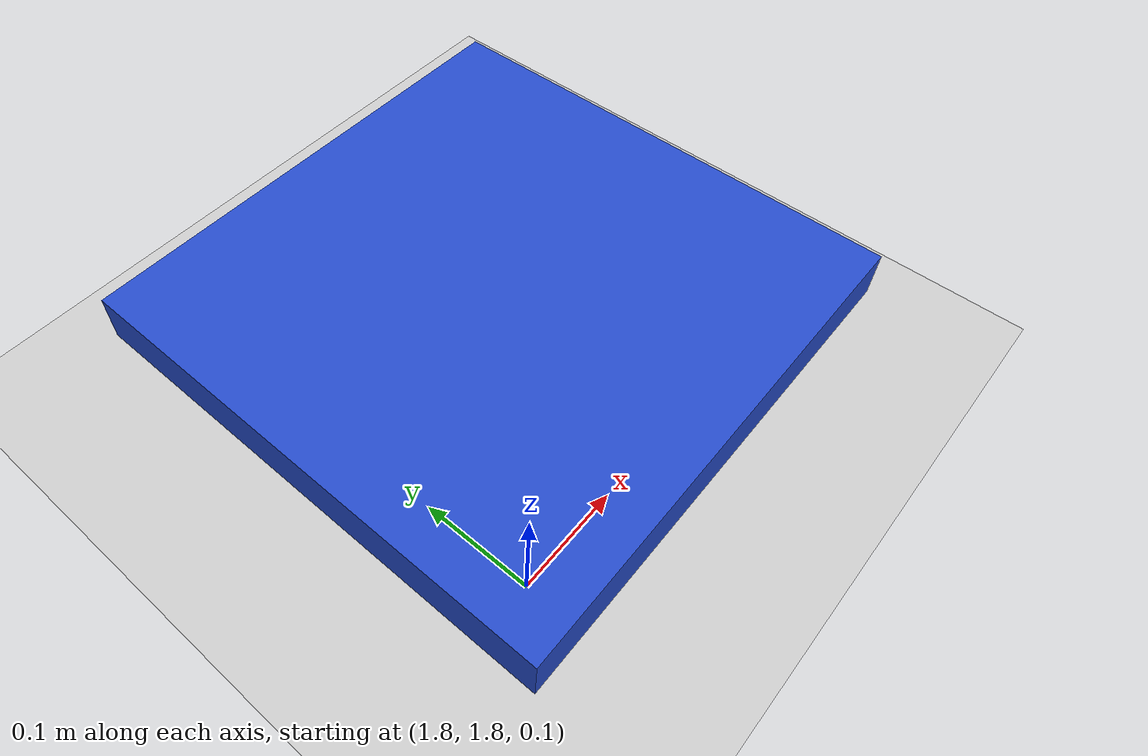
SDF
<?xml version="1.0"?>
<sdf version="1.5">
  <world name="default">
    <include>
      <uri>model://ground_plane</uri>
    </include>

    <include>
      <uri>model://sun</uri>
    </include>

    <!-- Target Object -->
    <model name="landing_target">
      <pose>2 2 0.1 0 0 0</pose>
      <static>true</static>
      <link name="link">
        <visual name="visual">
          <geometry>
            <box>
              <size>0.5 0.5 0.05</size>
            </box>
          </geometry>
          <material>
            <script>
              <uri>file://media/materials/scripts/gazebo.material</uri>
              <name>Gazebo/Blue</name>
            </script>
          </material>
        </visual>
      </link>
    </model>
  </world>
</sdf>
